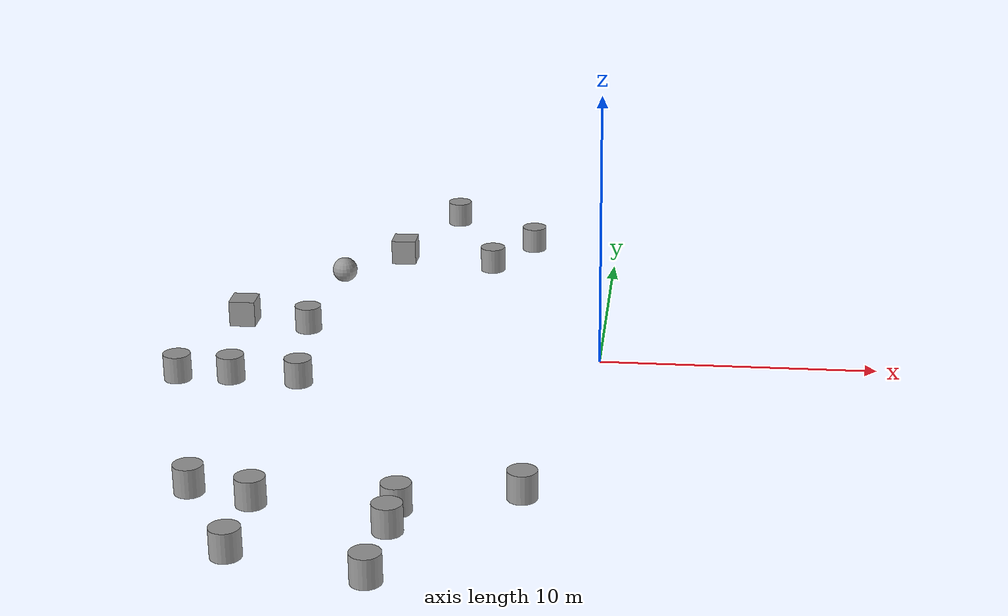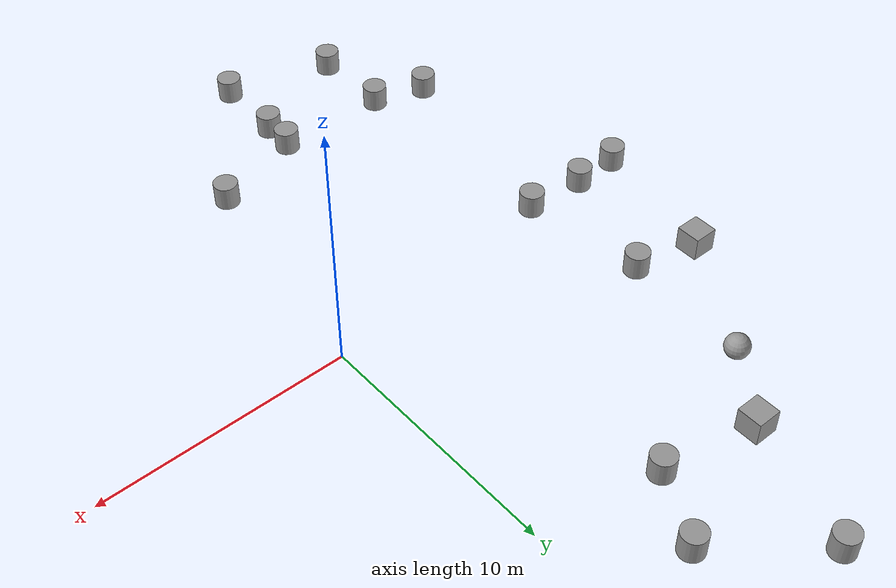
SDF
<sdf version="1.7">
 <model name="objetracetrack">
  <link name="link_17">
   <inertial>
    <mass>1</mass>
    <inertia><ixx>0.145833</ixx><ixy>0</ixy><ixz>0</ixz><iyy>0.145833</iyy><iyz>0</iyz><izz>0.125</izz></inertia>
   </inertial>
   <pose>-5.12652 10.6879 0 0 -0 0</pose>
   <visual name="visual">
    <geometry><cylinder><radius>0.5</radius><length>1</length></cylinder></geometry>
    <material>
     <lighting>1</lighting>
     <script><uri>file://media/materials/scripts/gazebo.material</uri><name>Gazebo/Grey</name></script>
     <shader type="pixel"/>
    </material>
   </visual>
   <collision name="collision">
    <geometry><cylinder><radius>0.5</radius><length>1</length></cylinder></geometry>
    <surface>
     <friction>
      <ode><mu>1</mu><mu2>1</mu2><fdir1>0 0 0</fdir1><slip1>0</slip1><slip2>0</slip2></ode>
      <torsional>
       <coefficient>1</coefficient>
       <patch_radius>0</patch_radius>
       <surface_radius>0</surface_radius>
       <use_patch_radius>1</use_patch_radius>
       <ode><slip>0</slip></ode>
      </torsional>
     </friction>
     <bounce><restitution_coefficient>0</restitution_coefficient><threshold>1e+06</threshold></bounce>
     <contact>
      <collide_without_contact>0</collide_without_contact>
      <collide_without_contact_bitmask>1</collide_without_contact_bitmask>
      <collide_bitmask>1</collide_bitmask>
      <ode>
       <soft_cfm>0</soft_cfm>
       <soft_erp>0.2</soft_erp>
       <kp>1e+13</kp>
       <kd>1</kd>
       <max_vel>0.01</max_vel>
       <min_depth>0</min_depth>
      </ode>
      <bullet>
       <split_impulse>1</split_impulse>
       <split_impulse_penetration_threshold>-0.01</split_impulse_penetration_threshold>
       <soft_cfm>0</soft_cfm>
       <soft_erp>0.2</soft_erp>
       <kp>1e+13</kp>
       <kd>1</kd>
      </bullet>
     </contact>
    </surface>
   </collision>
  </link>
  <link name="link_18">
   <inertial>
    <mass>1</mass>
    <inertia><ixx>0.145833</ixx><ixy>0</ixy><ixz>0</ixz><iyy>0.145833</iyy><iyz>0</iyz><izz>0.125</izz></inertia>
   </inertial>
   <pose>-3.63413 13.3905 0 0 -0 0</pose>
   <visual name="visual">
    <geometry><cylinder><radius>0.5</radius><length>1</length></cylinder></geometry>
    <material>
     <lighting>1</lighting>
     <script><uri>file://media/materials/scripts/gazebo.material</uri><name>Gazebo/Grey</name></script>
     <shader type="pixel"/>
    </material>
   </visual>
   <collision name="collision">
    <geometry><cylinder><radius>0.5</radius><length>1</length></cylinder></geometry>
    <surface>
     <friction>
      <ode><mu>1</mu><mu2>1</mu2><fdir1>0 0 0</fdir1><slip1>0</slip1><slip2>0</slip2></ode>
      <torsional>
       <coefficient>1</coefficient>
       <patch_radius>0</patch_radius>
       <surface_radius>0</surface_radius>
       <use_patch_radius>1</use_patch_radius>
       <ode><slip>0</slip></ode>
      </torsional>
     </friction>
     <bounce><restitution_coefficient>0</restitution_coefficient><threshold>1e+06</threshold></bounce>
     <contact>
      <collide_without_contact>0</collide_without_contact>
      <collide_without_contact_bitmask>1</collide_without_contact_bitmask>
      <collide_bitmask>1</collide_bitmask>
      <ode>
       <soft_cfm>0</soft_cfm>
       <soft_erp>0.2</soft_erp>
       <kp>1e+13</kp>
       <kd>1</kd>
       <max_vel>0.01</max_vel>
       <min_depth>0</min_depth>
      </ode>
      <bullet>
       <split_impulse>1</split_impulse>
       <split_impulse_penetration_threshold>-0.01</split_impulse_penetration_threshold>
       <soft_cfm>0</soft_cfm>
       <soft_erp>0.2</soft_erp>
       <kp>1e+13</kp>
       <kd>1</kd>
      </bullet>
     </contact>
    </surface>
   </collision>
  </link>
  <link name="link_19">
   <inertial>
    <mass>1</mass>
    <inertia><ixx>0.145833</ixx><ixy>0</ixy><ixz>0</ixz><iyy>0.145833</iyy><iyz>0</iyz><izz>0.125</izz></inertia>
   </inertial>
   <pose>-7.25312 16.5161 0 0 -0 0</pose>
   <visual name="visual">
    <geometry><cylinder><radius>0.5</radius><length>1</length></cylinder></geometry>
    <material>
     <lighting>1</lighting>
     <script><uri>file://media/materials/scripts/gazebo.material</uri><name>Gazebo/Grey</name></script>
     <shader type="pixel"/>
    </material>
   </visual>
   <collision name="collision">
    <geometry><cylinder><radius>0.5</radius><length>1</length></cylinder></geometry>
    <surface>
     <friction>
      <ode><mu>1</mu><mu2>1</mu2><fdir1>0 0 0</fdir1><slip1>0</slip1><slip2>0</slip2></ode>
      <torsional>
       <coefficient>1</coefficient>
       <patch_radius>0</patch_radius>
       <surface_radius>0</surface_radius>
       <use_patch_radius>1</use_patch_radius>
       <ode><slip>0</slip></ode>
      </torsional>
     </friction>
     <bounce><restitution_coefficient>0</restitution_coefficient><threshold>1e+06</threshold></bounce>
     <contact>
      <collide_without_contact>0</collide_without_contact>
      <collide_without_contact_bitmask>1</collide_without_contact_bitmask>
      <collide_bitmask>1</collide_bitmask>
      <ode>
       <soft_cfm>0</soft_cfm>
       <soft_erp>0.2</soft_erp>
       <kp>1e+13</kp>
       <kd>1</kd>
       <max_vel>0.01</max_vel>
       <min_depth>0</min_depth>
      </ode>
      <bullet>
       <split_impulse>1</split_impulse>
       <split_impulse_penetration_threshold>-0.01</split_impulse_penetration_threshold>
       <soft_cfm>0</soft_cfm>
       <soft_erp>0.2</soft_erp>
       <kp>1e+13</kp>
       <kd>1</kd>
      </bullet>
     </contact>
    </surface>
   </collision>
  </link>
  <link name="link_20">
   <inertial>
    <mass>1</mass>
    <inertia>
     <ixx>0.166667</ixx>
     <ixy>0</ixy>
     <ixz>0</ixz>
     <iyy>0.166667</iyy>
     <iyz>0</iyz>
     <izz>0.166667</izz>
    </inertia>
   </inertial>
   <pose>-8.94757 11.4807 0 0 -0 0</pose>
   <visual name="visual">
    <geometry><box><size>1 1 1</size></box></geometry>
    <material>
     <lighting>1</lighting>
     <script><uri>file://media/materials/scripts/gazebo.material</uri><name>Gazebo/Grey</name></script>
     <shader type="pixel"/>
    </material>
   </visual>
   <collision name="collision">
    <geometry><box><size>1 1 1</size></box></geometry>
    <surface>
     <friction>
      <ode><mu>1</mu><mu2>1</mu2><fdir1>0 0 0</fdir1><slip1>0</slip1><slip2>0</slip2></ode>
      <torsional>
       <coefficient>1</coefficient>
       <patch_radius>0</patch_radius>
       <surface_radius>0</surface_radius>
       <use_patch_radius>1</use_patch_radius>
       <ode><slip>0</slip></ode>
      </torsional>
     </friction>
     <bounce><restitution_coefficient>0</restitution_coefficient><threshold>1e+06</threshold></bounce>
     <contact>
      <collide_without_contact>0</collide_without_contact>
      <collide_without_contact_bitmask>1</collide_without_contact_bitmask>
      <collide_bitmask>1</collide_bitmask>
      <ode>
       <soft_cfm>0</soft_cfm>
       <soft_erp>0.2</soft_erp>
       <kp>1e+13</kp>
       <kd>1</kd>
       <max_vel>0.01</max_vel>
       <min_depth>0</min_depth>
      </ode>
      <bullet>
       <split_impulse>1</split_impulse>
       <split_impulse_penetration_threshold>-0.01</split_impulse_penetration_threshold>
       <soft_cfm>0</soft_cfm>
       <soft_erp>0.2</soft_erp>
       <kp>1e+13</kp>
       <kd>1</kd>
      </bullet>
     </contact>
    </surface>
   </collision>
  </link>
  <link name="link_21">
   <inertial>
    <mass>1</mass>
    <inertia><ixx>0.1</ixx><ixy>0</ixy><ixz>0</ixz><iyy>0.1</iyy><iyz>0</iyz><izz>0.1</izz></inertia>
   </inertial>
   <pose>-11.037 8.79509 0 0 -0 0</pose>
   <visual name="visual">
    <geometry><sphere><radius>0.5</radius></sphere></geometry>
    <material>
     <lighting>1</lighting>
     <script><uri>file://media/materials/scripts/gazebo.material</uri><name>Gazebo/Grey</name></script>
     <shader type="pixel"/>
    </material>
   </visual>
   <collision name="collision">
    <geometry><sphere><radius>0.5</radius></sphere></geometry>
    <surface>
     <friction>
      <ode><mu>1</mu><mu2>1</mu2><fdir1>0 0 0</fdir1><slip1>0</slip1><slip2>0</slip2></ode>
      <torsional>
       <coefficient>1</coefficient>
       <patch_radius>0</patch_radius>
       <surface_radius>0</surface_radius>
       <use_patch_radius>1</use_patch_radius>
       <ode><slip>0</slip></ode>
      </torsional>
     </friction>
     <bounce><restitution_coefficient>0</restitution_coefficient><threshold>1e+06</threshold></bounce>
     <contact>
      <collide_without_contact>0</collide_without_contact>
      <collide_without_contact_bitmask>1</collide_without_contact_bitmask>
      <collide_bitmask>1</collide_bitmask>
      <ode>
       <soft_cfm>0</soft_cfm>
       <soft_erp>0.2</soft_erp>
       <kp>1e+13</kp>
       <kd>1</kd>
       <max_vel>0.01</max_vel>
       <min_depth>0</min_depth>
      </ode>
      <bullet>
       <split_impulse>1</split_impulse>
       <split_impulse_penetration_threshold>-0.01</split_impulse_penetration_threshold>
       <soft_cfm>0</soft_cfm>
       <soft_erp>0.2</soft_erp>
       <kp>1e+13</kp>
       <kd>1</kd>
      </bullet>
     </contact>
    </surface>
   </collision>
  </link>
  <link name="link_22">
   <inertial>
    <mass>1</mass>
    <inertia>
     <ixx>0.166667</ixx>
     <ixy>0</ixy>
     <ixz>0</ixz>
     <iyy>0.166667</iyy>
     <iyz>0</iyz>
     <izz>0.166667</izz>
    </inertia>
   </inertial>
   <pose>-14.1076 3.99625 0 0 -0 0</pose>
   <visual name="visual">
    <geometry><box><size>1 1 1</size></box></geometry>
    <material>
     <lighting>1</lighting>
     <script><uri>file://media/materials/scripts/gazebo.material</uri><name>Gazebo/Grey</name></script>
     <shader type="pixel"/>
    </material>
   </visual>
   <collision name="collision">
    <geometry><box><size>1 1 1</size></box></geometry>
    <surface>
     <friction>
      <ode><mu>1</mu><mu2>1</mu2><fdir1>0 0 0</fdir1><slip1>0</slip1><slip2>0</slip2></ode>
      <torsional>
       <coefficient>1</coefficient>
       <patch_radius>0</patch_radius>
       <surface_radius>0</surface_radius>
       <use_patch_radius>1</use_patch_radius>
       <ode><slip>0</slip></ode>
      </torsional>
     </friction>
     <bounce><restitution_coefficient>0</restitution_coefficient><threshold>1e+06</threshold></bounce>
     <contact>
      <collide_without_contact>0</collide_without_contact>
      <collide_without_contact_bitmask>1</collide_without_contact_bitmask>
      <collide_bitmask>1</collide_bitmask>
      <ode>
       <soft_cfm>0</soft_cfm>
       <soft_erp>0.2</soft_erp>
       <kp>1e+13</kp>
       <kd>1</kd>
       <max_vel>0.01</max_vel>
       <min_depth>0</min_depth>
      </ode>
      <bullet>
       <split_impulse>1</split_impulse>
       <split_impulse_penetration_threshold>-0.01</split_impulse_penetration_threshold>
       <soft_cfm>0</soft_cfm>
       <soft_erp>0.2</soft_erp>
       <kp>1e+13</kp>
       <kd>1</kd>
      </bullet>
     </contact>
    </surface>
   </collision>
  </link>
  <link name="link_23">
   <inertial>
    <mass>1</mass>
    <inertia><ixx>0.145833</ixx><ixy>0</ixy><ixz>0</ixz><iyy>0.145833</iyy><iyz>0</iyz><izz>0.125</izz></inertia>
   </inertial>
   <pose>-10.8016 -1.75228 0 0 -0 0</pose>
   <visual name="visual">
    <geometry><cylinder><radius>0.5</radius><length>1</length></cylinder></geometry>
    <material>
     <lighting>1</lighting>
     <script><uri>file://media/materials/scripts/gazebo.material</uri><name>Gazebo/Grey</name></script>
     <shader type="pixel"/>
    </material>
   </visual>
   <collision name="collision">
    <geometry><cylinder><radius>0.5</radius><length>1</length></cylinder></geometry>
    <surface>
     <friction>
      <ode><mu>1</mu><mu2>1</mu2><fdir1>0 0 0</fdir1><slip1>0</slip1><slip2>0</slip2></ode>
      <torsional>
       <coefficient>1</coefficient>
       <patch_radius>0</patch_radius>
       <surface_radius>0</surface_radius>
       <use_patch_radius>1</use_patch_radius>
       <ode><slip>0</slip></ode>
      </torsional>
     </friction>
     <bounce><restitution_coefficient>0</restitution_coefficient><threshold>1e+06</threshold></bounce>
     <contact>
      <collide_without_contact>0</collide_without_contact>
      <collide_without_contact_bitmask>1</collide_without_contact_bitmask>
      <collide_bitmask>1</collide_bitmask>
      <ode>
       <soft_cfm>0</soft_cfm>
       <soft_erp>0.2</soft_erp>
       <kp>1e+13</kp>
       <kd>1</kd>
       <max_vel>0.01</max_vel>
       <min_depth>0</min_depth>
      </ode>
      <bullet>
       <split_impulse>1</split_impulse>
       <split_impulse_penetration_threshold>-0.01</split_impulse_penetration_threshold>
       <soft_cfm>0</soft_cfm>
       <soft_erp>0.2</soft_erp>
       <kp>1e+13</kp>
       <kd>1</kd>
      </bullet>
     </contact>
    </surface>
   </collision>
  </link>
  <link name="link_24">
   <inertial>
    <mass>1</mass>
    <inertia><ixx>0.145833</ixx><ixy>0</ixy><ixz>0</ixz><iyy>0.145833</iyy><iyz>0</iyz><izz>0.125</izz></inertia>
   </inertial>
   <pose>-13.3144 -1.61028 0 0 -0 0</pose>
   <visual name="visual">
    <geometry><cylinder><radius>0.5</radius><length>1</length></cylinder></geometry>
    <material>
     <lighting>1</lighting>
     <script><uri>file://media/materials/scripts/gazebo.material</uri><name>Gazebo/Grey</name></script>
     <shader type="pixel"/>
    </material>
   </visual>
   <collision name="collision">
    <geometry><cylinder><radius>0.5</radius><length>1</length></cylinder></geometry>
    <surface>
     <friction>
      <ode><mu>1</mu><mu2>1</mu2><fdir1>0 0 0</fdir1><slip1>0</slip1><slip2>0</slip2></ode>
      <torsional>
       <coefficient>1</coefficient>
       <patch_radius>0</patch_radius>
       <surface_radius>0</surface_radius>
       <use_patch_radius>1</use_patch_radius>
       <ode><slip>0</slip></ode>
      </torsional>
     </friction>
     <bounce><restitution_coefficient>0</restitution_coefficient><threshold>1e+06</threshold></bounce>
     <contact>
      <collide_without_contact>0</collide_without_contact>
      <collide_without_contact_bitmask>1</collide_without_contact_bitmask>
      <collide_bitmask>1</collide_bitmask>
      <ode>
       <soft_cfm>0</soft_cfm>
       <soft_erp>0.2</soft_erp>
       <kp>1e+13</kp>
       <kd>1</kd>
       <max_vel>0.01</max_vel>
       <min_depth>0</min_depth>
      </ode>
      <bullet>
       <split_impulse>1</split_impulse>
       <split_impulse_penetration_threshold>-0.01</split_impulse_penetration_threshold>
       <soft_cfm>0</soft_cfm>
       <soft_erp>0.2</soft_erp>
       <kp>1e+13</kp>
       <kd>1</kd>
      </bullet>
     </contact>
    </surface>
   </collision>
  </link>
  <link name="link_25">
   <inertial>
    <mass>1</mass>
    <inertia><ixx>0.145833</ixx><ixy>0</ixy><ixz>0</ixz><iyy>0.145833</iyy><iyz>0</iyz><izz>0.125</izz></inertia>
   </inertial>
   <pose>-15.263 -1.6902 0 0 -0 0</pose>
   <visual name="visual">
    <geometry><cylinder><radius>0.5</radius><length>1</length></cylinder></geometry>
    <material>
     <lighting>1</lighting>
     <script><uri>file://media/materials/scripts/gazebo.material</uri><name>Gazebo/Grey</name></script>
     <shader type="pixel"/>
    </material>
   </visual>
   <collision name="collision">
    <geometry><cylinder><radius>0.5</radius><length>1</length></cylinder></geometry>
    <surface>
     <friction>
      <ode><mu>1</mu><mu2>1</mu2><fdir1>0 0 0</fdir1><slip1>0</slip1><slip2>0</slip2></ode>
      <torsional>
       <coefficient>1</coefficient>
       <patch_radius>0</patch_radius>
       <surface_radius>0</surface_radius>
       <use_patch_radius>1</use_patch_radius>
       <ode><slip>0</slip></ode>
      </torsional>
     </friction>
     <bounce><restitution_coefficient>0</restitution_coefficient><threshold>1e+06</threshold></bounce>
     <contact>
      <collide_without_contact>0</collide_without_contact>
      <collide_without_contact_bitmask>1</collide_without_contact_bitmask>
      <collide_bitmask>1</collide_bitmask>
      <ode>
       <soft_cfm>0</soft_cfm>
       <soft_erp>0.2</soft_erp>
       <kp>1e+13</kp>
       <kd>1</kd>
       <max_vel>0.01</max_vel>
       <min_depth>0</min_depth>
      </ode>
      <bullet>
       <split_impulse>1</split_impulse>
       <split_impulse_penetration_threshold>-0.01</split_impulse_penetration_threshold>
       <soft_cfm>0</soft_cfm>
       <soft_erp>0.2</soft_erp>
       <kp>1e+13</kp>
       <kd>1</kd>
      </bullet>
     </contact>
    </surface>
   </collision>
  </link>
  <link name="link_26">
   <inertial>
    <mass>1</mass>
    <inertia><ixx>0.145833</ixx><ixy>0</ixy><ixz>0</ixz><iyy>0.145833</iyy><iyz>0</iyz><izz>0.125</izz></inertia>
   </inertial>
   <pose>-11.477 3.3998 0 0 -0 0</pose>
   <visual name="visual">
    <geometry><cylinder><radius>0.5</radius><length>1</length></cylinder></geometry>
    <material>
     <lighting>1</lighting>
     <script><uri>file://media/materials/scripts/gazebo.material</uri><name>Gazebo/Grey</name></script>
     <shader type="pixel"/>
    </material>
   </visual>
   <collision name="collision">
    <geometry><cylinder><radius>0.5</radius><length>1</length></cylinder></geometry>
    <surface>
     <friction>
      <ode><mu>1</mu><mu2>1</mu2><fdir1>0 0 0</fdir1><slip1>0</slip1><slip2>0</slip2></ode>
      <torsional>
       <coefficient>1</coefficient>
       <patch_radius>0</patch_radius>
       <surface_radius>0</surface_radius>
       <use_patch_radius>1</use_patch_radius>
       <ode><slip>0</slip></ode>
      </torsional>
     </friction>
     <bounce><restitution_coefficient>0</restitution_coefficient><threshold>1e+06</threshold></bounce>
     <contact>
      <collide_without_contact>0</collide_without_contact>
      <collide_without_contact_bitmask>1</collide_without_contact_bitmask>
      <collide_bitmask>1</collide_bitmask>
      <ode>
       <soft_cfm>0</soft_cfm>
       <soft_erp>0.2</soft_erp>
       <kp>1e+13</kp>
       <kd>1</kd>
       <max_vel>0.01</max_vel>
       <min_depth>0</min_depth>
      </ode>
      <bullet>
       <split_impulse>1</split_impulse>
       <split_impulse_penetration_threshold>-0.01</split_impulse_penetration_threshold>
       <soft_cfm>0</soft_cfm>
       <soft_erp>0.2</soft_erp>
       <kp>1e+13</kp>
       <kd>1</kd>
      </bullet>
     </contact>
    </surface>
   </collision>
  </link>
  <link name="link_27">
   <inertial>
    <mass>1</mass>
    <inertia><ixx>0.145833</ixx><ixy>0</ixy><ixz>0</ixz><iyy>0.145833</iyy><iyz>0</iyz><izz>0.125</izz></inertia>
   </inertial>
   <pose>-12.5145 -10.5787 0 0 -0 0</pose>
   <visual name="visual">
    <geometry><cylinder><radius>0.5</radius><length>1</length></cylinder></geometry>
    <material>
     <lighting>1</lighting>
     <script><uri>file://media/materials/scripts/gazebo.material</uri><name>Gazebo/Grey</name></script>
     <shader type="pixel"/>
    </material>
   </visual>
   <collision name="collision">
    <geometry><cylinder><radius>0.5</radius><length>1</length></cylinder></geometry>
    <surface>
     <friction>
      <ode><mu>1</mu><mu2>1</mu2><fdir1>0 0 0</fdir1><slip1>0</slip1><slip2>0</slip2></ode>
      <torsional>
       <coefficient>1</coefficient>
       <patch_radius>0</patch_radius>
       <surface_radius>0</surface_radius>
       <use_patch_radius>1</use_patch_radius>
       <ode><slip>0</slip></ode>
      </torsional>
     </friction>
     <bounce><restitution_coefficient>0</restitution_coefficient><threshold>1e+06</threshold></bounce>
     <contact>
      <collide_without_contact>0</collide_without_contact>
      <collide_without_contact_bitmask>1</collide_without_contact_bitmask>
      <collide_bitmask>1</collide_bitmask>
      <ode>
       <soft_cfm>0</soft_cfm>
       <soft_erp>0.2</soft_erp>
       <kp>1e+13</kp>
       <kd>1</kd>
       <max_vel>0.01</max_vel>
       <min_depth>0</min_depth>
      </ode>
      <bullet>
       <split_impulse>1</split_impulse>
       <split_impulse_penetration_threshold>-0.01</split_impulse_penetration_threshold>
       <soft_cfm>0</soft_cfm>
       <soft_erp>0.2</soft_erp>
       <kp>1e+13</kp>
       <kd>1</kd>
      </bullet>
     </contact>
    </surface>
   </collision>
  </link>
  <link name="link_28">
   <inertial>
    <mass>1</mass>
    <inertia><ixx>0.145833</ixx><ixy>0</ixy><ixz>0</ixz><iyy>0.145833</iyy><iyz>0</iyz><izz>0.125</izz></inertia>
   </inertial>
   <pose>-5.69559 -11.3145 0 0 -0 0</pose>
   <visual name="visual">
    <geometry><cylinder><radius>0.5</radius><length>1</length></cylinder></geometry>
    <material>
     <lighting>1</lighting>
     <script><uri>file://media/materials/scripts/gazebo.material</uri><name>Gazebo/Grey</name></script>
     <shader type="pixel"/>
    </material>
   </visual>
   <collision name="collision">
    <geometry><cylinder><radius>0.5</radius><length>1</length></cylinder></geometry>
    <surface>
     <friction>
      <ode><mu>1</mu><mu2>1</mu2><fdir1>0 0 0</fdir1><slip1>0</slip1><slip2>0</slip2></ode>
      <torsional>
       <coefficient>1</coefficient>
       <patch_radius>0</patch_radius>
       <surface_radius>0</surface_radius>
       <use_patch_radius>1</use_patch_radius>
       <ode><slip>0</slip></ode>
      </torsional>
     </friction>
     <bounce><restitution_coefficient>0</restitution_coefficient><threshold>1e+06</threshold></bounce>
     <contact>
      <collide_without_contact>0</collide_without_contact>
      <collide_without_contact_bitmask>1</collide_without_contact_bitmask>
      <collide_bitmask>1</collide_bitmask>
      <ode>
       <soft_cfm>0</soft_cfm>
       <soft_erp>0.2</soft_erp>
       <kp>1e+13</kp>
       <kd>1</kd>
       <max_vel>0.01</max_vel>
       <min_depth>0</min_depth>
      </ode>
      <bullet>
       <split_impulse>1</split_impulse>
       <split_impulse_penetration_threshold>-0.01</split_impulse_penetration_threshold>
       <soft_cfm>0</soft_cfm>
       <soft_erp>0.2</soft_erp>
       <kp>1e+13</kp>
       <kd>1</kd>
      </bullet>
     </contact>
    </surface>
   </collision>
  </link>
  <link name="link_29">
   <inertial>
    <mass>1</mass>
    <inertia><ixx>0.145833</ixx><ixy>0</ixy><ixz>0</ixz><iyy>0.145833</iyy><iyz>0</iyz><izz>0.125</izz></inertia>
   </inertial>
   <pose>-10.353 -11.2654 0 0 -0 0</pose>
   <visual name="visual">
    <geometry><cylinder><radius>0.5</radius><length>1</length></cylinder></geometry>
    <material>
     <lighting>1</lighting>
     <script><uri>file://media/materials/scripts/gazebo.material</uri><name>Gazebo/Grey</name></script>
     <shader type="pixel"/>
    </material>
   </visual>
   <collision name="collision">
    <geometry><cylinder><radius>0.5</radius><length>1</length></cylinder></geometry>
    <surface>
     <friction>
      <ode><mu>1</mu><mu2>1</mu2><fdir1>0 0 0</fdir1><slip1>0</slip1><slip2>0</slip2></ode>
      <torsional>
       <coefficient>1</coefficient>
       <patch_radius>0</patch_radius>
       <surface_radius>0</surface_radius>
       <use_patch_radius>1</use_patch_radius>
       <ode><slip>0</slip></ode>
      </torsional>
     </friction>
     <bounce><restitution_coefficient>0</restitution_coefficient><threshold>1e+06</threshold></bounce>
     <contact>
      <collide_without_contact>0</collide_without_contact>
      <collide_without_contact_bitmask>1</collide_without_contact_bitmask>
      <collide_bitmask>1</collide_bitmask>
      <ode>
       <soft_cfm>0</soft_cfm>
       <soft_erp>0.2</soft_erp>
       <kp>1e+13</kp>
       <kd>1</kd>
       <max_vel>0.01</max_vel>
       <min_depth>0</min_depth>
      </ode>
      <bullet>
       <split_impulse>1</split_impulse>
       <split_impulse_penetration_threshold>-0.01</split_impulse_penetration_threshold>
       <soft_cfm>0</soft_cfm>
       <soft_erp>0.2</soft_erp>
       <kp>1e+13</kp>
       <kd>1</kd>
      </bullet>
     </contact>
    </surface>
   </collision>
  </link>
  <link name="link_30">
   <inertial>
    <mass>1</mass>
    <inertia><ixx>0.145833</ixx><ixy>0</ixy><ixz>0</ixz><iyy>0.145833</iyy><iyz>0</iyz><izz>0.125</izz></inertia>
   </inertial>
   <pose>-10.3341 -14.652 0 0 -0 0</pose>
   <visual name="visual">
    <geometry><cylinder><radius>0.5</radius><length>1</length></cylinder></geometry>
    <material>
     <lighting>1</lighting>
     <script><uri>file://media/materials/scripts/gazebo.material</uri><name>Gazebo/Grey</name></script>
     <shader type="pixel"/>
    </material>
   </visual>
   <collision name="collision">
    <geometry><cylinder><radius>0.5</radius><length>1</length></cylinder></geometry>
    <surface>
     <friction>
      <ode><mu>1</mu><mu2>1</mu2><fdir1>0 0 0</fdir1><slip1>0</slip1><slip2>0</slip2></ode>
      <torsional>
       <coefficient>1</coefficient>
       <patch_radius>0</patch_radius>
       <surface_radius>0</surface_radius>
       <use_patch_radius>1</use_patch_radius>
       <ode><slip>0</slip></ode>
      </torsional>
     </friction>
     <bounce><restitution_coefficient>0</restitution_coefficient><threshold>1e+06</threshold></bounce>
     <contact>
      <collide_without_contact>0</collide_without_contact>
      <collide_without_contact_bitmask>1</collide_without_contact_bitmask>
      <collide_bitmask>1</collide_bitmask>
      <ode>
       <soft_cfm>0</soft_cfm>
       <soft_erp>0.2</soft_erp>
       <kp>1e+13</kp>
       <kd>1</kd>
       <max_vel>0.01</max_vel>
       <min_depth>0</min_depth>
      </ode>
      <bullet>
       <split_impulse>1</split_impulse>
       <split_impulse_penetration_threshold>-0.01</split_impulse_penetration_threshold>
       <soft_cfm>0</soft_cfm>
       <soft_erp>0.2</soft_erp>
       <kp>1e+13</kp>
       <kd>1</kd>
      </bullet>
     </contact>
    </surface>
   </collision>
  </link>
  <link name="link_31">
   <inertial>
    <mass>1</mass>
    <inertia><ixx>0.145833</ixx><ixy>0</ixy><ixz>0</ixz><iyy>0.145833</iyy><iyz>0</iyz><izz>0.125</izz></inertia>
   </inertial>
   <pose>-5.75444 -12.6943 0 0 -0 0</pose>
   <visual name="visual">
    <geometry><cylinder><radius>0.5</radius><length>1</length></cylinder></geometry>
    <material>
     <lighting>1</lighting>
     <script><uri>file://media/materials/scripts/gazebo.material</uri><name>Gazebo/Grey</name></script>
     <shader type="pixel"/>
    </material>
   </visual>
   <collision name="collision">
    <geometry><cylinder><radius>0.5</radius><length>1</length></cylinder></geometry>
    <surface>
     <friction>
      <ode><mu>1</mu><mu2>1</mu2><fdir1>0 0 0</fdir1><slip1>0</slip1><slip2>0</slip2></ode>
      <torsional>
       <coefficient>1</coefficient>
       <patch_radius>0</patch_radius>
       <surface_radius>0</surface_radius>
       <use_patch_radius>1</use_patch_radius>
       <ode><slip>0</slip></ode>
      </torsional>
     </friction>
     <bounce><restitution_coefficient>0</restitution_coefficient><threshold>1e+06</threshold></bounce>
     <contact>
      <collide_without_contact>0</collide_without_contact>
      <collide_without_contact_bitmask>1</collide_without_contact_bitmask>
      <collide_bitmask>1</collide_bitmask>
      <ode>
       <soft_cfm>0</soft_cfm>
       <soft_erp>0.2</soft_erp>
       <kp>1e+13</kp>
       <kd>1</kd>
       <max_vel>0.01</max_vel>
       <min_depth>0</min_depth>
      </ode>
      <bullet>
       <split_impulse>1</split_impulse>
       <split_impulse_penetration_threshold>-0.01</split_impulse_penetration_threshold>
       <soft_cfm>0</soft_cfm>
       <soft_erp>0.2</soft_erp>
       <kp>1e+13</kp>
       <kd>1</kd>
      </bullet>
     </contact>
    </surface>
   </collision>
  </link>
  <link name="link_32">
   <inertial>
    <mass>1</mass>
    <inertia><ixx>0.145833</ixx><ixy>0</ixy><ixz>0</ixz><iyy>0.145833</iyy><iyz>0</iyz><izz>0.125</izz></inertia>
   </inertial>
   <pose>-5.88007 -15.8232 0 0 -0 0</pose>
   <visual name="visual">
    <geometry><cylinder><radius>0.5</radius><length>1</length></cylinder></geometry>
    <material>
     <lighting>1</lighting>
     <script><uri>file://media/materials/scripts/gazebo.material</uri><name>Gazebo/Grey</name></script>
     <shader type="pixel"/>
    </material>
   </visual>
   <collision name="collision">
    <geometry><cylinder><radius>0.5</radius><length>1</length></cylinder></geometry>
    <surface>
     <friction>
      <ode><mu>1</mu><mu2>1</mu2><fdir1>0 0 0</fdir1><slip1>0</slip1><slip2>0</slip2></ode>
      <torsional>
       <coefficient>1</coefficient>
       <patch_radius>0</patch_radius>
       <surface_radius>0</surface_radius>
       <use_patch_radius>1</use_patch_radius>
       <ode><slip>0</slip></ode>
      </torsional>
     </friction>
     <bounce><restitution_coefficient>0</restitution_coefficient><threshold>1e+06</threshold></bounce>
     <contact>
      <collide_without_contact>0</collide_without_contact>
      <collide_without_contact_bitmask>1</collide_without_contact_bitmask>
      <collide_bitmask>1</collide_bitmask>
      <ode>
       <soft_cfm>0</soft_cfm>
       <soft_erp>0.2</soft_erp>
       <kp>1e+13</kp>
       <kd>1</kd>
       <max_vel>0.01</max_vel>
       <min_depth>0</min_depth>
      </ode>
      <bullet>
       <split_impulse>1</split_impulse>
       <split_impulse_penetration_threshold>-0.01</split_impulse_penetration_threshold>
       <soft_cfm>0</soft_cfm>
       <soft_erp>0.2</soft_erp>
       <kp>1e+13</kp>
       <kd>1</kd>
      </bullet>
     </contact>
    </surface>
   </collision>
  </link>
  <link name="link_33">
   <inertial>
    <mass>1</mass>
    <inertia><ixx>0.145833</ixx><ixy>0</ixy><ixz>0</ixz><iyy>0.145833</iyy><iyz>0</iyz><izz>0.125</izz></inertia>
   </inertial>
   <pose>-1.85245 -10.087 0 0 -0 0</pose>
   <visual name="visual">
    <geometry><cylinder><radius>0.5</radius><length>1</length></cylinder></geometry>
    <material>
     <lighting>1</lighting>
     <script><uri>file://media/materials/scripts/gazebo.material</uri><name>Gazebo/Grey</name></script>
     <shader type="pixel"/>
    </material>
   </visual>
   <collision name="collision">
    <geometry><cylinder><radius>0.5</radius><length>1</length></cylinder></geometry>
    <surface>
     <friction>
      <ode><mu>1</mu><mu2>1</mu2><fdir1>0 0 0</fdir1><slip1>0</slip1><slip2>0</slip2></ode>
      <torsional>
       <coefficient>1</coefficient>
       <patch_radius>0</patch_radius>
       <surface_radius>0</surface_radius>
       <use_patch_radius>1</use_patch_radius>
       <ode><slip>0</slip></ode>
      </torsional>
     </friction>
     <bounce><restitution_coefficient>0</restitution_coefficient><threshold>1e+06</threshold></bounce>
     <contact>
      <collide_without_contact>0</collide_without_contact>
      <collide_without_contact_bitmask>1</collide_without_contact_bitmask>
      <collide_bitmask>1</collide_bitmask>
      <ode>
       <soft_cfm>0</soft_cfm>
       <soft_erp>0.2</soft_erp>
       <kp>1e+13</kp>
       <kd>1</kd>
       <max_vel>0.01</max_vel>
       <min_depth>0</min_depth>
      </ode>
      <bullet>
       <split_impulse>1</split_impulse>
       <split_impulse_penetration_threshold>-0.01</split_impulse_penetration_threshold>
       <soft_cfm>0</soft_cfm>
       <soft_erp>0.2</soft_erp>
       <kp>1e+13</kp>
       <kd>1</kd>
      </bullet>
     </contact>
    </surface>
   </collision>
  </link>
  <static>0</static>
 </model>
</sdf>
